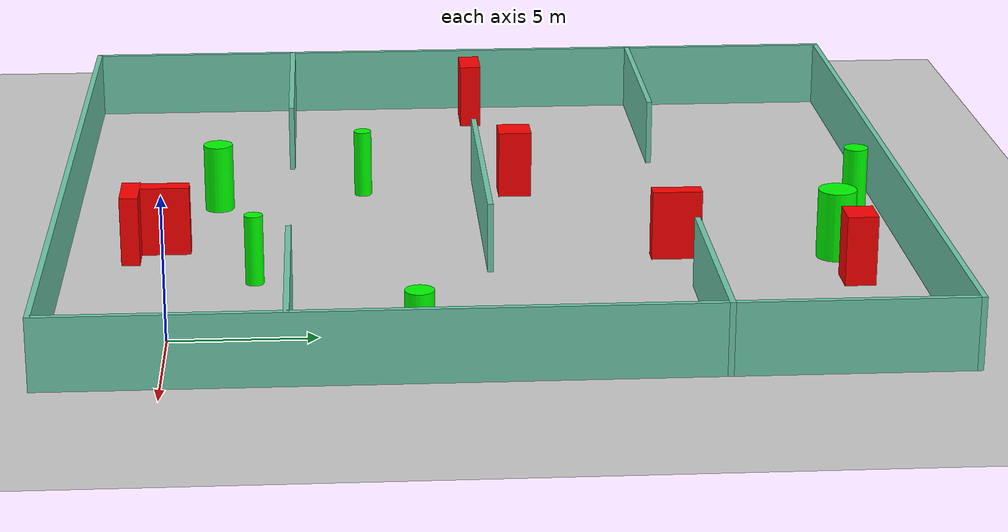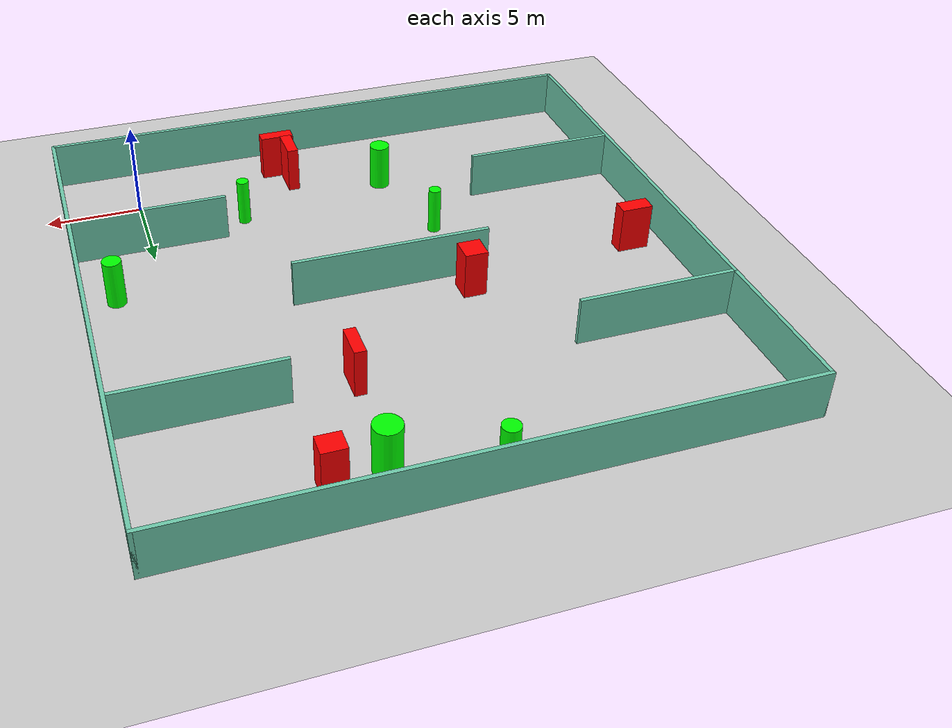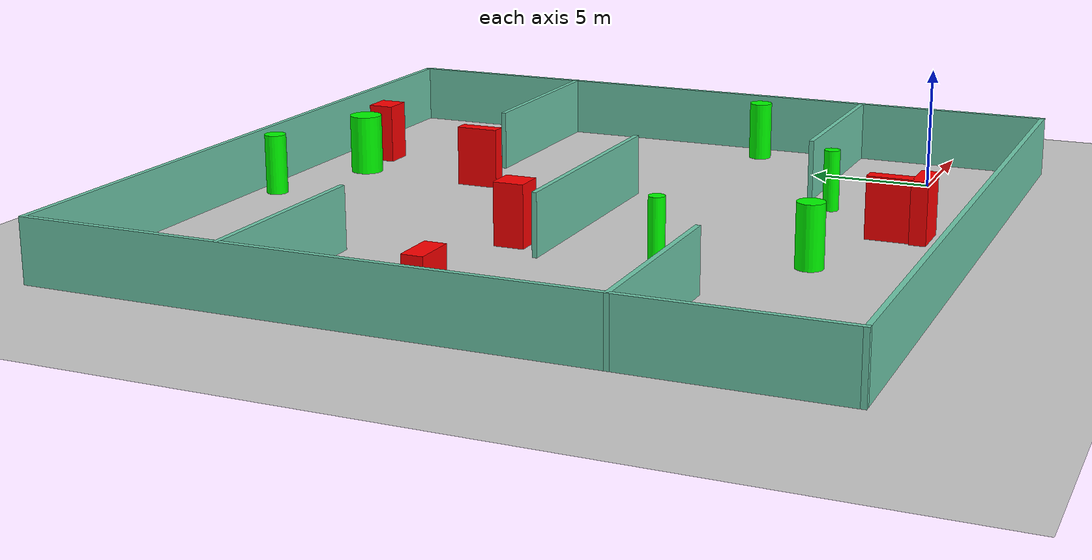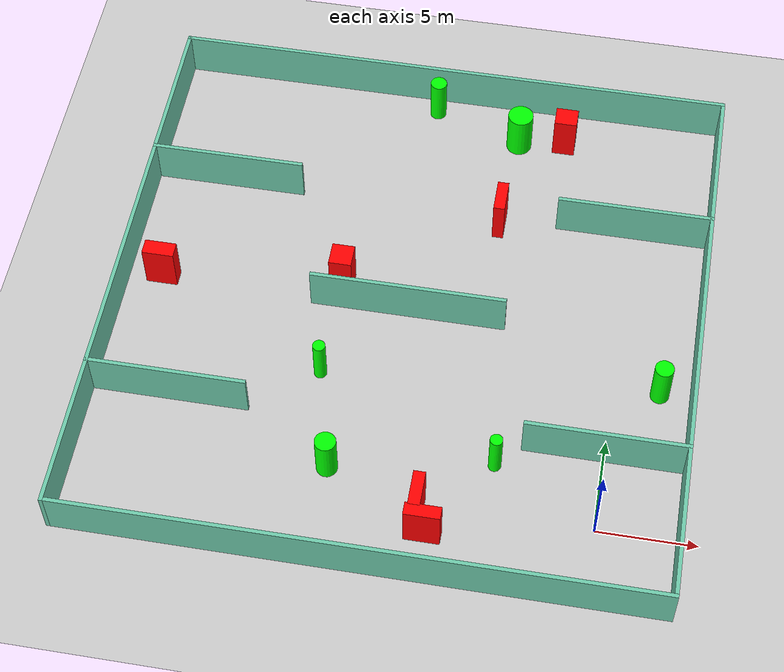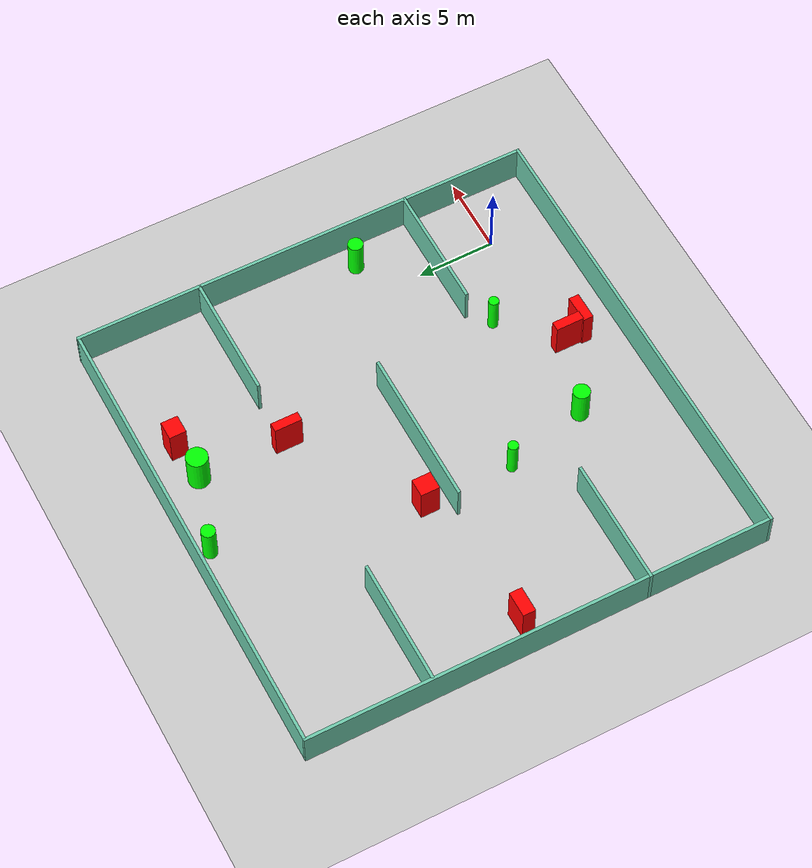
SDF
<sdf version="1.7">
 <world name="default">
  <light name="sun" type="directional">
   <pose>0 0 10 0 -0 0</pose>
   <diffuse>0.8 0.8 0.8 1</diffuse>
   <specular>0.2 0.2 0.2 1</specular>
   <attenuation>
    <range>1000</range>
    <constant>0.9</constant>
    <linear>0.01</linear>
    <quadratic>0.001</quadratic>
   </attenuation>
   <direction>-0.5 0.1 -0.9</direction>
   <spot><inner_angle>0</inner_angle><outer_angle>0</outer_angle><falloff>0</falloff></spot>
  </light>
  <model name="ground_plane">
   <static>1</static>
   <link name="link">
    <collision name="collision">
     <geometry><plane><normal>0 0 1</normal><size>100 100</size></plane></geometry>
     <surface>
      <contact><collide_bitmask>65535</collide_bitmask></contact>
      <friction><ode><mu>100</mu><mu2>50</mu2></ode></friction>
     </surface>
    </collision>
    <visual name="visual">
     <cast_shadows>0</cast_shadows>
     <geometry><plane><normal>0 0 1</normal><size>100 100</size></plane></geometry>
     <material>
      <script><uri>file://media/materials/scripts/gazebo.material</uri><name>Gazebo/Grey</name></script>
     </material>
    </visual>
   </link>
  </model>
  <gravity>0 0 -9.8</gravity>
  <magnetic_field>6e-06 2.3e-05 -4.2e-05</magnetic_field>
  <atmosphere type="adiabatic"/>
  <physics type="ode">
   <max_step_size>0.001</max_step_size>
   <real_time_factor>1</real_time_factor>
   <real_time_update_rate>1000</real_time_update_rate>
  </physics>
  <scene><ambient>0.4 0.4 0.4 1</ambient><background>0.7 0.7 0.7 1</background><shadows>1</shadows></scene>
  <spherical_coordinates>
   <surface_model>EARTH_WGS84</surface_model>
   <latitude_deg>0</latitude_deg>
   <longitude_deg>0</longitude_deg>
   <elevation>0</elevation>
   <heading_deg>0</heading_deg>
  </spherical_coordinates>
  <model name="my_base_walls">
   <link name="Wall_10">
    <collision name="Wall_10_Collision">
     <geometry><box><size>8.2 0.2 2.5</size></box></geometry>
     <pose>0 0 1.25 0 -0 0</pose>
    </collision>
    <visual name="Wall_10_Visual">
     <pose>0 0 1.25 0 -0 0</pose>
     <geometry><box><size>8.2 0.2 2.5</size></box></geometry>
     <material>
      <script><uri>file://media/materials/scripts/gazebo.material</uri><name>Gazebo/Grey</name></script>
      <ambient>0.435294 0.796078 0.67451 1</ambient>
     </material>
     <meta><layer>0</layer></meta>
    </visual>
    <pose>-11 -7 0 0 -0 0</pose>
   </link>
   <link name="Wall_12">
    <collision name="Wall_12_Collision">
     <geometry><box><size>8.2 0.2 2.5</size></box></geometry>
     <pose>0 0 1.25 0 -0 0</pose>
    </collision>
    <visual name="Wall_12_Visual">
     <pose>0 0 1.25 0 -0 0</pose>
     <geometry><box><size>8.2 0.2 2.5</size></box></geometry>
     <material>
      <script><uri>file://media/materials/scripts/gazebo.material</uri><name>Gazebo/Grey</name></script>
      <ambient>0.435294 0.796078 0.67451 1</ambient>
     </material>
     <meta><layer>0</layer></meta>
    </visual>
    <pose>-11 7 0 0 -0 0</pose>
   </link>
   <link name="Wall_14">
    <collision name="Wall_14_Collision">
     <geometry><box><size>8.2 0.2 2.5</size></box></geometry>
     <pose>0 0 1.25 0 -0 0</pose>
    </collision>
    <visual name="Wall_14_Visual">
     <pose>0 0 1.25 0 -0 0</pose>
     <geometry><box><size>8.2 0.2 2.5</size></box></geometry>
     <material>
      <script><uri>file://media/materials/scripts/gazebo.material</uri><name>Gazebo/Grey</name></script>
      <ambient>0.435294 0.796078 0.67451 1</ambient>
     </material>
     <meta><layer>0</layer></meta>
    </visual>
    <pose>11 7 0 0 -0 3.14159</pose>
   </link>
   <link name="Wall_16">
    <collision name="Wall_16_Collision">
     <geometry><box><size>10.2 0.2 2.5</size></box></geometry>
     <pose>0 0 1.25 0 -0 0</pose>
    </collision>
    <visual name="Wall_16_Visual">
     <pose>0 0 1.25 0 -0 0</pose>
     <geometry><box><size>10.2 0.2 2.5</size></box></geometry>
     <material>
      <script><uri>file://media/materials/scripts/gazebo.material</uri><name>Gazebo/Grey</name></script>
      <ambient>0.435294 0.796078 0.67451 1</ambient>
     </material>
     <meta><layer>0</layer></meta>
    </visual>
    <pose>0 0 0 0 -0 3.14159</pose>
   </link>
   <link name="Wall_2">
    <collision name="Wall_2_Collision">
     <geometry><box><size>30.2 0.2 2.5</size></box></geometry>
     <pose>0 0 1.25 0 -0 0</pose>
    </collision>
    <visual name="Wall_2_Visual">
     <pose>0 0 1.25 0 -0 0</pose>
     <geometry><box><size>30.2 0.2 2.5</size></box></geometry>
     <material>
      <script><uri>file://media/materials/scripts/gazebo.material</uri><name>Gazebo/Grey</name></script>
      <ambient>0.435294 0.796078 0.67451 1</ambient>
     </material>
     <meta><layer>0</layer></meta>
    </visual>
    <pose>0 -15 0 0 -0 3.14159</pose>
   </link>
   <link name="Wall_3">
    <collision name="Wall_3_Collision">
     <geometry><box><size>30.2 0.2 2.5</size></box></geometry>
     <pose>0 0 1.25 0 -0 0</pose>
    </collision>
    <visual name="Wall_3_Visual">
     <pose>0 0 1.25 0 -0 0</pose>
     <geometry><box><size>30.2 0.2 2.5</size></box></geometry>
     <material>
      <script><uri>file://media/materials/scripts/gazebo.material</uri><name>Gazebo/Grey</name></script>
      <ambient>0.435294 0.796078 0.67451 1</ambient>
     </material>
     <meta><layer>0</layer></meta>
    </visual>
    <pose>-15 0 0 0 -0 1.5708</pose>
   </link>
   <link name="Wall_4">
    <collision name="Wall_4_Collision">
     <geometry><box><size>30.2 0.2 2.5</size></box></geometry>
     <pose>0 0 1.25 0 -0 0</pose>
    </collision>
    <visual name="Wall_4_Visual">
     <pose>0 0 1.25 0 -0 0</pose>
     <geometry><box><size>30.2 0.2 2.5</size></box></geometry>
     <material>
      <script><uri>file://media/materials/scripts/gazebo.material</uri><name>Gazebo/Grey</name></script>
      <ambient>0.435294 0.796078 0.67451 1</ambient>
     </material>
     <meta><layer>0</layer></meta>
    </visual>
    <pose>0 15 0 0 -0 0</pose>
   </link>
   <link name="Wall_6">
    <collision name="Wall_6_Collision">
     <geometry><box><size>30.2 0.2 2.5</size></box></geometry>
     <pose>0 0 1.25 0 -0 0</pose>
    </collision>
    <visual name="Wall_6_Visual">
     <pose>0 0 1.25 0 -0 0</pose>
     <geometry><box><size>30.2 0.2 2.5</size></box></geometry>
     <material>
      <script><uri>file://media/materials/scripts/gazebo.material</uri><name>Gazebo/Grey</name></script>
      <ambient>0.435294 0.796078 0.67451 1</ambient>
     </material>
     <meta><layer>0</layer></meta>
    </visual>
    <pose>15 0 0 0 -0 1.5708</pose>
   </link>
   <link name="Wall_8">
    <collision name="Wall_8_Collision">
     <geometry><box><size>8.2 0.2 2.5</size></box></geometry>
     <pose>0 0 1.25 0 -0 0</pose>
    </collision>
    <visual name="Wall_8_Visual">
     <pose>0 0 1.25 0 -0 0</pose>
     <geometry><box><size>8.2 0.2 2.5</size></box></geometry>
     <material>
      <script><uri>file://media/materials/scripts/gazebo.material</uri><name>Gazebo/Grey</name></script>
      <ambient>0.435294 0.796078 0.67451 1</ambient>
     </material>
     <meta><layer>0</layer></meta>
    </visual>
    <pose>11 -7 0 0 -0 3.14159</pose>
   </link>
   <static>1</static>
   <pose>-11 11 0 0 -0 0</pose>
  </model>
  <model name="cylinder1">
   <static>1</static>
   <link name="link">
    <inertial>
     <mass>1</mass>
     <inertia><ixx>0.5</ixx><ixy>0</ixy><ixz>0</ixz><iyy>0.5</iyy><iyz>0</iyz><izz>1</izz></inertia>
    </inertial>
    <collision name="collision">
     <geometry><cylinder><radius>0.32194842279689523</radius><length>2.5</length></cylinder></geometry>
    </collision>
    <visual name="visual">
     <geometry><cylinder><radius>0.32194842279689523</radius><length>2.5</length></cylinder></geometry>
     <material>
      <ambient>0 1 0 1</ambient>
      <diffuse>0 1 0 1</diffuse>
      <specular>0.1 0.1 0.1 1</specular>
      <emissive>0 0 0 0</emissive>
     </material>
    </visual>
   </link>
   <pose>-5.261324150971227 2.787851440651245 1.25 0 0 0</pose>
  </model>
  <model name="cylinder2">
   <static>1</static>
   <link name="link">
    <inertial>
     <mass>1</mass>
     <inertia><ixx>0.5</ixx><ixy>0</ixy><ixz>0</ixz><iyy>0.5</iyy><iyz>0</iyz><izz>1</izz></inertia>
    </inertial>
    <collision name="collision">
     <geometry><cylinder><radius>0.32578316108864763</radius><length>2.5</length></cylinder></geometry>
    </collision>
    <visual name="visual">
     <geometry><cylinder><radius>0.32578316108864763</radius><length>2.5</length></cylinder></geometry>
     <material>
      <ambient>0 1 0 1</ambient>
      <diffuse>0 1 0 1</diffuse>
      <specular>0.1 0.1 0.1 1</specular>
      <emissive>0 0 0 0</emissive>
     </material>
    </visual>
   </link>
   <pose>-14.760993484522825 6.706393573803728 1.25 0 0 0</pose>
  </model>
  <model name="cylinder3">
   <static>1</static>
   <link name="link">
    <inertial>
     <mass>1</mass>
     <inertia><ixx>0.5</ixx><ixy>0</ixy><ixz>0</ixz><iyy>0.5</iyy><iyz>0</iyz><izz>1</izz></inertia>
    </inertial>
    <collision name="collision">
     <geometry><cylinder><radius>0.4436645929610312</radius><length>2.5</length></cylinder></geometry>
    </collision>
    <visual name="visual">
     <geometry><cylinder><radius>0.4436645929610312</radius><length>2.5</length></cylinder></geometry>
     <material>
      <ambient>0 1 0 1</ambient>
      <diffuse>0 1 0 1</diffuse>
      <specular>0.1 0.1 0.1 1</specular>
      <emissive>0 0 0 0</emissive>
     </material>
    </visual>
   </link>
   <pose>-11.609037120734184 24.947858956916882 1.25 0 0 0</pose>
  </model>
  <model name="cylinder4">
   <static>1</static>
   <link name="link">
    <inertial>
     <mass>1</mass>
     <inertia><ixx>0.5</ixx><ixy>0</ixy><ixz>0</ixz><iyy>0.5</iyy><iyz>0</iyz><izz>1</izz></inertia>
    </inertial>
    <collision name="collision">
     <geometry><cylinder><radius>0.4822897015434672</radius><length>2.5</length></cylinder></geometry>
    </collision>
    <visual name="visual">
     <geometry><cylinder><radius>0.4822897015434672</radius><length>2.5</length></cylinder></geometry>
     <material>
      <ambient>0 1 0 1</ambient>
      <diffuse>0 1 0 1</diffuse>
      <specular>0.1 0.1 0.1 1</specular>
      <emissive>0 0 0 0</emissive>
     </material>
    </visual>
   </link>
   <pose>2.3702628839127726 8.221243235413361 1.25 0 0 0</pose>
  </model>
  <model name="cylinder5">
   <static>1</static>
   <link name="link">
    <inertial>
     <mass>1</mass>
     <inertia><ixx>0.5</ixx><ixy>0</ixy><ixz>0</ixz><iyy>0.5</iyy><iyz>0</iyz><izz>1</izz></inertia>
    </inertial>
    <collision name="collision">
     <geometry><cylinder><radius>0.6829594582424449</radius><length>2.5</length></cylinder></geometry>
    </collision>
    <visual name="visual">
     <geometry><cylinder><radius>0.6829594582424449</radius><length>2.5</length></cylinder></geometry>
     <material>
      <ambient>0 1 0 1</ambient>
      <diffuse>0 1 0 1</diffuse>
      <specular>0.1 0.1 0.1 1</specular>
      <emissive>0 0 0 0</emissive>
     </material>
    </visual>
   </link>
   <pose>-6.826156721206649 23.366729579529444 1.25 0 0 0</pose>
  </model>
  <model name="cylinder6">
   <static>1</static>
   <link name="link">
    <inertial>
     <mass>1</mass>
     <inertia><ixx>0.5</ixx><ixy>0</ixy><ixz>0</ixz><iyy>0.5</iyy><iyz>0</iyz><izz>1</izz></inertia>
    </inertial>
    <collision name="collision">
     <geometry><cylinder><radius>0.5369000498397326</radius><length>2.5</length></cylinder></geometry>
    </collision>
    <visual name="visual">
     <geometry><cylinder><radius>0.5369000498397326</radius><length>2.5</length></cylinder></geometry>
     <material>
      <ambient>0 1 0 1</ambient>
      <diffuse>0 1 0 1</diffuse>
      <specular>0.1 0.1 0.1 1</specular>
      <emissive>0 0 0 0</emissive>
     </material>
    </visual>
   </link>
   <pose>-13.378962061269366 1.3157314247712728 1.25 0 0 0</pose>
  </model>
  <model name="box1">
   <static>1</static>
   <link name="link">
    <inertial>
     <mass>1</mass>
     <inertia><ixx>0.083</ixx><ixy>0</ixy><ixz>0</ixz><iyy>0.083</iyy><iyz>0</iyz><izz>0.083</izz></inertia>
    </inertial>
    <collision name="collision">
     <geometry><box><size>0.5950602372999082 1.7743715907108055 2.5</size></box></geometry>
    </collision>
    <visual name="visual">
     <geometry><box><size>0.5950602372999082 1.7743715907108055 2.5</size></box></geometry>
     <material>
      <ambient>1 0 0 1</ambient>
      <diffuse>1 0 0 1</diffuse>
      <specular>0.1 0.1 0.1 1</specular>
      <emissive>0 0 0 0</emissive>
     </material>
    </visual>
    <sensor name="my_contact" type="contact">
     <contact><collision>box_collision</collision><topic>__default_topic__</topic></contact>
    </sensor>
   </link>
   <pose>-7.107696141936721 17.67772022179719 1.25 0 0 0</pose>
  </model>
  <model name="box2">
   <static>1</static>
   <link name="link">
    <inertial>
     <mass>1</mass>
     <inertia><ixx>0.083</ixx><ixy>0</ixy><ixz>0</ixz><iyy>0.083</iyy><iyz>0</iyz><izz>0.083</izz></inertia>
    </inertial>
    <collision name="collision">
     <geometry><box><size>1.651840142980336 0.8196833705955613 2.5</size></box></geometry>
    </collision>
    <visual name="visual">
     <geometry><box><size>1.651840142980336 0.8196833705955613 2.5</size></box></geometry>
     <material>
      <ambient>1 0 0 1</ambient>
      <diffuse>1 0 0 1</diffuse>
      <specular>0.1 0.1 0.1 1</specular>
      <emissive>0 0 0 0</emissive>
     </material>
    </visual>
    <sensor name="my_contact" type="contact">
     <contact><collision>box_collision</collision><topic>__default_topic__</topic></contact>
    </sensor>
   </link>
   <pose>-24.09526429592183 11.26938013880695 1.25 0 0 0</pose>
  </model>
  <model name="box3">
   <static>1</static>
   <link name="link">
    <inertial>
     <mass>1</mass>
     <inertia><ixx>0.083</ixx><ixy>0</ixy><ixz>0</ixz><iyy>0.083</iyy><iyz>0</iyz><izz>0.083</izz></inertia>
    </inertial>
    <collision name="collision">
     <geometry><box><size>0.6038844195402356 1.8138587023410073 2.5</size></box></geometry>
    </collision>
    <visual name="visual">
     <geometry><box><size>0.6038844195402356 1.8138587023410073 2.5</size></box></geometry>
     <material>
      <ambient>1 0 0 1</ambient>
      <diffuse>1 0 0 1</diffuse>
      <specular>0.1 0.1 0.1 1</specular>
      <emissive>0 0 0 0</emissive>
     </material>
    </visual>
    <sensor name="my_contact" type="contact">
     <contact><collision>box_collision</collision><topic>__default_topic__</topic></contact>
    </sensor>
   </link>
   <pose>-8.617386103463733 -0.45126127998747956 1.25 0 0 0</pose>
  </model>
  <model name="box4">
   <static>1</static>
   <link name="link">
    <inertial>
     <mass>1</mass>
     <inertia><ixx>0.083</ixx><ixy>0</ixy><ixz>0</ixz><iyy>0.083</iyy><iyz>0</iyz><izz>0.083</izz></inertia>
    </inertial>
    <collision name="collision">
     <geometry><box><size>1.7988925953121289 0.6600586610943441 2.5</size></box></geometry>
    </collision>
    <visual name="visual">
     <geometry><box><size>1.7988925953121289 0.6600586610943441 2.5</size></box></geometry>
     <material>
      <ambient>1 0 0 1</ambient>
      <diffuse>1 0 0 1</diffuse>
      <specular>0.1 0.1 0.1 1</specular>
      <emissive>0 0 0 0</emissive>
     </material>
    </visual>
    <sensor name="my_contact" type="contact">
     <contact><collision>box_collision</collision><topic>__default_topic__</topic></contact>
    </sensor>
   </link>
   <pose>-8.148354267302704 -1.6189630896274512 1.25 0 0 0</pose>
  </model>
  <model name="box5">
   <static>1</static>
   <link name="link">
    <inertial>
     <mass>1</mass>
     <inertia><ixx>0.083</ixx><ixy>0</ixy><ixz>0</ixz><iyy>0.083</iyy><iyz>0</iyz><izz>0.083</izz></inertia>
    </inertial>
    <collision name="collision">
     <geometry><box><size>1.1783100543718992 1.2295631235228413 2.5</size></box></geometry>
    </collision>
    <visual name="visual">
     <geometry><box><size>1.1783100543718992 1.2295631235228413 2.5</size></box></geometry>
     <material>
      <ambient>1 0 0 1</ambient>
      <diffuse>1 0 0 1</diffuse>
      <specular>0.1 0.1 0.1 1</specular>
      <emissive>0 0 0 0</emissive>
     </material>
    </visual>
    <sensor name="my_contact" type="contact">
     <contact><collision>box_collision</collision><topic>__default_topic__</topic></contact>
    </sensor>
   </link>
   <pose>-14.696820360178634 12.448194264561854 1.25 0 0 0</pose>
  </model>
  <model name="box6">
   <static>1</static>
   <link name="link">
    <inertial>
     <mass>1</mass>
     <inertia><ixx>0.083</ixx><ixy>0</ixy><ixz>0</ixz><iyy>0.083</iyy><iyz>0</iyz><izz>0.083</izz></inertia>
    </inertial>
    <collision name="collision">
     <geometry><box><size>1.2035396137260923 1.0867669036472147 2.5</size></box></geometry>
    </collision>
    <visual name="visual">
     <geometry><box><size>1.2035396137260923 1.0867669036472147 2.5</size></box></geometry>
     <material>
      <ambient>1 0 0 1</ambient>
      <diffuse>1 0 0 1</diffuse>
      <specular>0.1 0.1 0.1 1</specular>
      <emissive>0 0 0 0</emissive>
     </material>
    </visual>
    <sensor name="my_contact" type="contact">
     <contact><collision>box_collision</collision><topic>__default_topic__</topic></contact>
    </sensor>
   </link>
   <pose>-4.347321532357238 23.687466100915756 1.25 0 0 0</pose>
  </model>
 </world>
</sdf>
